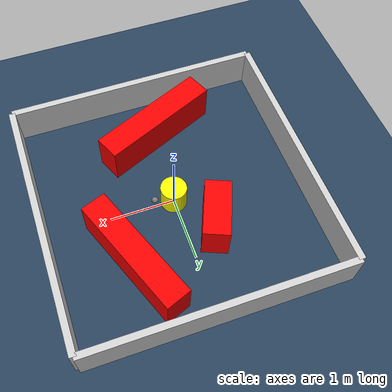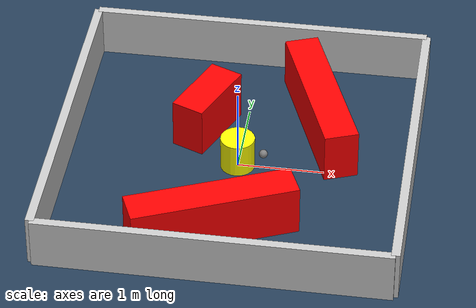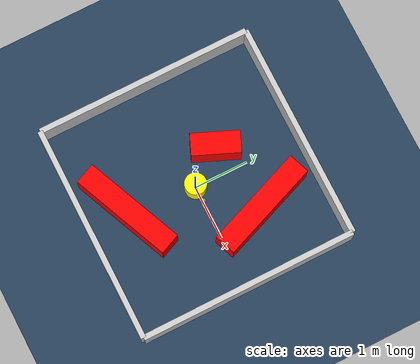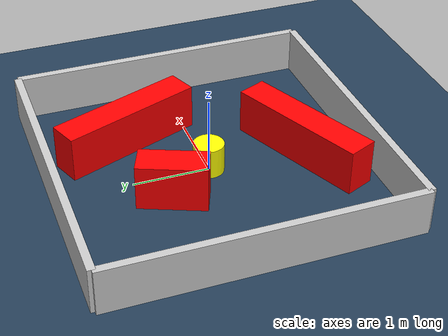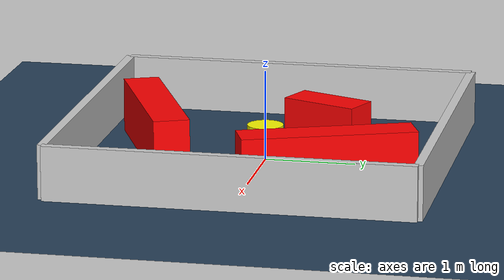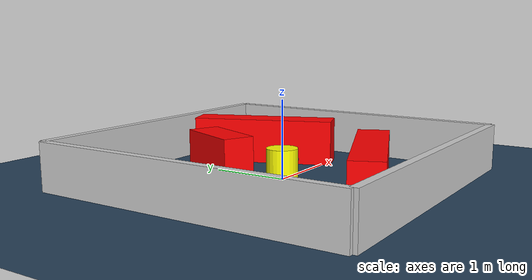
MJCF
<?xml version="1.0" ?>
<mujoco model="generated_environment">
  <option timestep="0.01" integrator="RK4" cone="elliptic"/>
  <default>
    <geom density="1"/>
  </default>
  <asset>
    <texture builtin="gradient" height="3072" rgb1="0.3 0.5 0.7" rgb2="0 0 0" type="skybox" width="512"/>
    <texture builtin="checker" height="300" mark="edge" markrgb="0.8 0.8 0.8" name="groundplane" rgb1="0.2 0.3 0.4" rgb2="0.1 0.2 0.3" type="2d" width="300"/>
    <material name="groundplane" reflectance="0.2" texrepeat="5 5" texture="groundplane" texuniform="true"/>
    <material name="robot" rgba="0.0 1.0 0.0 1"/>
  </asset>
  <worldbody>
    <light dir="0 0 -1" directional="true" pos="0 0 1.5"/>
    <geom condim="4" friction="1.0 0.005 0.001" material="groundplane" name="floor" size="0 0 0.05" type="plane"/>
    <body name="walls">
      <geom name="wall_1" condim="4" pos="-2.0 0.0 0.3" rgba="0.800000011920929 0.800000011920929 0.800000011920929 1.0" size="0.05 2.0 0.3" type="box"/>
      <geom name="wall_2" condim="4" pos="2.0 0.0 0.3" rgba="0.800000011920929 0.800000011920929 0.800000011920929 1.0" size="0.05 2.0 0.3" type="box"/>
      <geom name="wall_3" condim="4" pos="0.0 -2.0 0.3" rgba="0.800000011920929 0.800000011920929 0.800000011920929 1.0" size="2.0 0.05 0.3" type="box"/>
      <geom name="wall_4" condim="4" pos="0.0 2.0 0.3" rgba="0.800000011920929 0.800000011920929 0.800000011920929 1.0" size="2.0 0.05 0.3" type="box"/>
    </body>
    <body name="robot">
      <joint name="joint_x" type="slide" pos="0 0 0" axis="1 0 0"/>
      <joint name="joint_y" type="slide" pos="0 0 0" axis="0 1 0"/>
      <geom name="robot" type="sphere" pos="0.3 0.0 0.2" size="0.05" mass="5." friction="1.0 0.005 0.0001" condim="4" rgba="0.5 0.5 0.5 1.0"/>
      <site name="sensor_ball"/>
    </body>
    <body name="obstacle_movable_1">
      <geom name="obstacle_movable_1" condim="4" pos="0.0 0.0 0.2" euler="0 0 0.0" friction="1.0 0.005 0.001" rgba="1.0 1.0 0.0 1.0" size="0.2 0.2 0.0" type="cylinder" mass="0.1"/>
      <joint type="free"/>
    </body>
    <body name="obstacle_2_static">
      <geom name="obstacle_2_static" condim="4" pos="-0.44908041615379957 0.6152092858909868 0.3" euler="0 0 67.15192328025744" friction="1.0 0.005 0.001" rgba="1 0 0 1" size="0.44022803155883256 0.2 0.3" type="box"/>
    </body>
    <body name="obstacle_3_static">
      <geom name="obstacle_3_static" condim="4" pos="-0.10956410231326486 -1.2571331050978025 0.3" euler="0 0 203.21121717840344" friction="1.0 0.005 0.001" rgba="1 0 0 1" size="0.9611868902653213 0.2 0.3" type="box"/>
    </body>
    <body name="obstacle_4_static">
      <geom name="obstacle_4_static" condim="4" pos="0.8634245432577015 0.8410081957389817 0.3" euler="0 0 290.9652629200903" friction="1.0 0.005 0.001" rgba="1 0 0 1" size="0.958147411826153 0.2 0.3" type="box"/>
    </body>
  </worldbody>
  <actuator>
    <motor name="actuator_x" joint="joint_x" gear="1" ctrlrange="-1 1"/>
    <motor name="actuator_y" joint="joint_y" gear="1" ctrlrange="-1 1"/>
  </actuator>
</mujoco>
